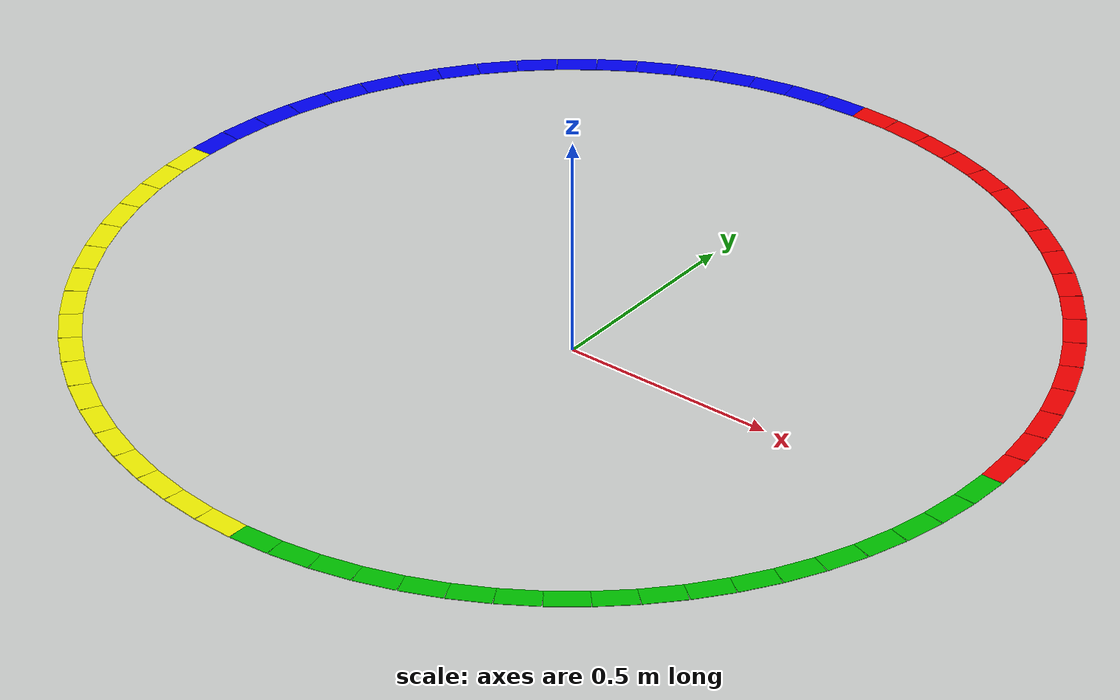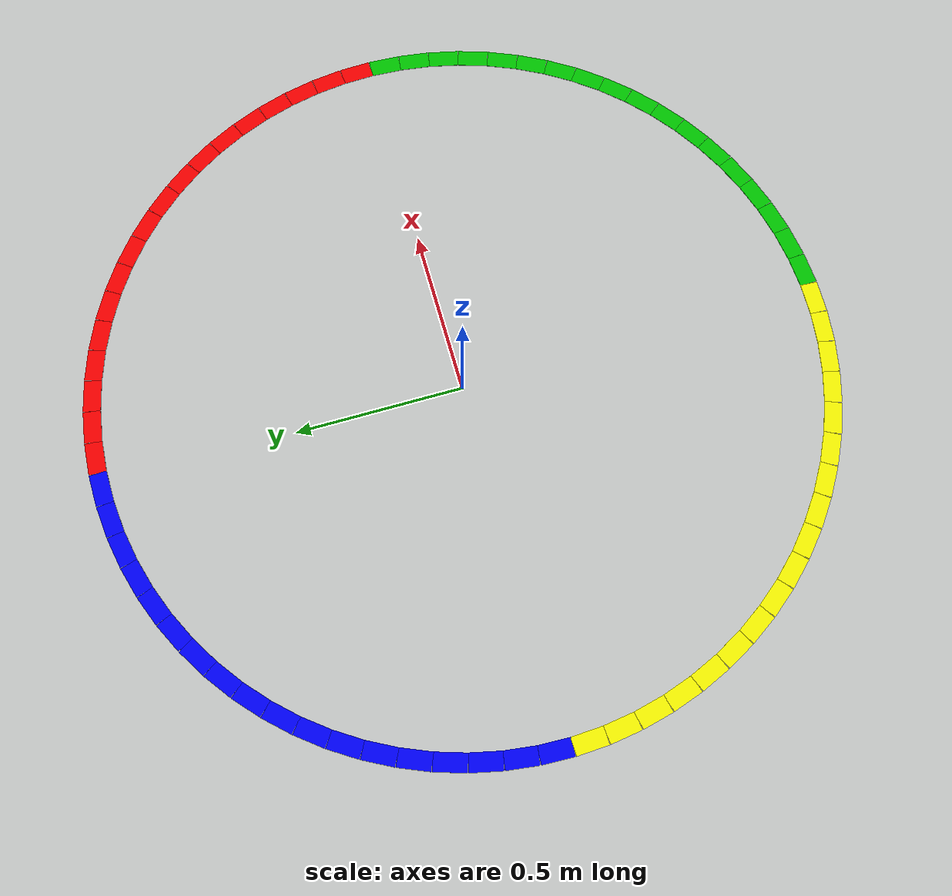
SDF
<?xml version="1.0" ?>
<sdf version="1.4">
  <model name="dlz_nav_line">
    <static>true</static>
    <link name="dlz_nav_line_link">
      <!-- Same link offset as dlz model so this can be spawned at the same world position -->
      <pose>-5.0192 0.0192 0 0 0 0</pose>
      <inertial>
        <mass>0.1</mass>
      </inertial>
      <!-- Navigation circle: radius=1.05m, 72 segments (5 deg each), 4 colored quadrants -->
      <!-- Red:    segments 000-017 (  0- 89 deg) -->
      <!-- Blue:   segments 018-035 ( 90-179 deg) -->
      <!-- Yellow: segments 036-053 (180-269 deg) -->
      <!-- Green:  segments 054-071 (270-359 deg) -->
      <visual name="nav_circle_000">
        <cast_shadows>false</cast_shadows>
        <pose>6.068201 0.026600 0.112 0 0 1.614430</pose>
        <geometry><box><size>0.091601 0.05 0.001</size></box></geometry>
        <material><ambient>1.0 0.0 0.0 1.0</ambient><diffuse>1.0 0.0 0.0 1.0</diffuse></material>
      </visual>
      <visual name="nav_circle_001">
        <cast_shadows>false</cast_shadows>
        <pose>6.060217 0.117853 0.112 0 0 1.701696</pose>
        <geometry><box><size>0.091601 0.05 0.001</size></box></geometry>
        <material><ambient>1.0 0.0 0.0 1.0</ambient><diffuse>1.0 0.0 0.0 1.0</diffuse></material>
      </visual>
      <visual name="nav_circle_002">
        <cast_shadows>false</cast_shadows>
        <pose>6.044311 0.208062 0.112 0 0 1.788962</pose>
        <geometry><box><size>0.091601 0.05 0.001</size></box></geometry>
        <material><ambient>1.0 0.0 0.0 1.0</ambient><diffuse>1.0 0.0 0.0 1.0</diffuse></material>
      </visual>
      <visual name="nav_circle_003">
        <cast_shadows>false</cast_shadows>
        <pose>6.020603 0.296541 0.112 0 0 1.876229</pose>
        <geometry><box><size>0.091601 0.05 0.001</size></box></geometry>
        <material><ambient>1.0 0.0 0.0 1.0</ambient><diffuse>1.0 0.0 0.0 1.0</diffuse></material>
      </visual>
      <visual name="nav_circle_004">
        <cast_shadows>false</cast_shadows>
        <pose>5.989274 0.382618 0.112 0 0 1.963495</pose>
        <geometry><box><size>0.091601 0.05 0.001</size></box></geometry>
        <material><ambient>1.0 0.0 0.0 1.0</ambient><diffuse>1.0 0.0 0.0 1.0</diffuse></material>
      </visual>
      <visual name="nav_circle_005">
        <cast_shadows>false</cast_shadows>
        <pose>5.950561 0.465636 0.112 0 0 2.050762</pose>
        <geometry><box><size>0.091601 0.05 0.001</size></box></geometry>
        <material><ambient>1.0 0.0 0.0 1.0</ambient><diffuse>1.0 0.0 0.0 1.0</diffuse></material>
      </visual>
      <visual name="nav_circle_006">
        <cast_shadows>false</cast_shadows>
        <pose>5.904761 0.544965 0.112 0 0 2.138028</pose>
        <geometry><box><size>0.091601 0.05 0.001</size></box></geometry>
        <material><ambient>1.0 0.0 0.0 1.0</ambient><diffuse>1.0 0.0 0.0 1.0</diffuse></material>
      </visual>
      <visual name="nav_circle_007">
        <cast_shadows>false</cast_shadows>
        <pose>5.852221 0.620000 0.112 0 0 2.225295</pose>
        <geometry><box><size>0.091601 0.05 0.001</size></box></geometry>
        <material><ambient>1.0 0.0 0.0 1.0</ambient><diffuse>1.0 0.0 0.0 1.0</diffuse></material>
      </visual>
      <visual name="nav_circle_008">
        <cast_shadows>false</cast_shadows>
        <pose>5.793341 0.690170 0.112 0 0 2.312561</pose>
        <geometry><box><size>0.091601 0.05 0.001</size></box></geometry>
        <material><ambient>1.0 0.0 0.0 1.0</ambient><diffuse>1.0 0.0 0.0 1.0</diffuse></material>
      </visual>
      <visual name="nav_circle_009">
        <cast_shadows>false</cast_shadows>
        <pose>5.728570 0.754941 0.112 0 0 2.399828</pose>
        <geometry><box><size>0.091601 0.05 0.001</size></box></geometry>
        <material><ambient>1.0 0.0 0.0 1.0</ambient><diffuse>1.0 0.0 0.0 1.0</diffuse></material>
      </visual>
      <visual name="nav_circle_010">
        <cast_shadows>false</cast_shadows>
        <pose>5.658400 0.813821 0.112 0 0 2.487094</pose>
        <geometry><box><size>0.091601 0.05 0.001</size></box></geometry>
        <material><ambient>1.0 0.0 0.0 1.0</ambient><diffuse>1.0 0.0 0.0 1.0</diffuse></material>
      </visual>
      <visual name="nav_circle_011">
        <cast_shadows>false</cast_shadows>
        <pose>5.583365 0.866361 0.112 0 0 2.574361</pose>
        <geometry><box><size>0.091601 0.05 0.001</size></box></geometry>
        <material><ambient>1.0 0.0 0.0 1.0</ambient><diffuse>1.0 0.0 0.0 1.0</diffuse></material>
      </visual>
      <visual name="nav_circle_012">
        <cast_shadows>false</cast_shadows>
        <pose>5.504036 0.912161 0.112 0 0 2.661627</pose>
        <geometry><box><size>0.091601 0.05 0.001</size></box></geometry>
        <material><ambient>1.0 0.0 0.0 1.0</ambient><diffuse>1.0 0.0 0.0 1.0</diffuse></material>
      </visual>
      <visual name="nav_circle_013">
        <cast_shadows>false</cast_shadows>
        <pose>5.421018 0.950874 0.112 0 0 2.748894</pose>
        <geometry><box><size>0.091601 0.05 0.001</size></box></geometry>
        <material><ambient>1.0 0.0 0.0 1.0</ambient><diffuse>1.0 0.0 0.0 1.0</diffuse></material>
      </visual>
      <visual name="nav_circle_014">
        <cast_shadows>false</cast_shadows>
        <pose>5.334941 0.982203 0.112 0 0 2.836160</pose>
        <geometry><box><size>0.091601 0.05 0.001</size></box></geometry>
        <material><ambient>1.0 0.0 0.0 1.0</ambient><diffuse>1.0 0.0 0.0 1.0</diffuse></material>
      </visual>
      <visual name="nav_circle_015">
        <cast_shadows>false</cast_shadows>
        <pose>5.246462 1.005911 0.112 0 0 2.923426</pose>
        <geometry><box><size>0.091601 0.05 0.001</size></box></geometry>
        <material><ambient>1.0 0.0 0.0 1.0</ambient><diffuse>1.0 0.0 0.0 1.0</diffuse></material>
      </visual>
      <visual name="nav_circle_016">
        <cast_shadows>false</cast_shadows>
        <pose>5.156253 1.021817 0.112 0 0 3.010693</pose>
        <geometry><box><size>0.091601 0.05 0.001</size></box></geometry>
        <material><ambient>1.0 0.0 0.0 1.0</ambient><diffuse>1.0 0.0 0.0 1.0</diffuse></material>
      </visual>
      <visual name="nav_circle_017">
        <cast_shadows>false</cast_shadows>
        <pose>5.065000 1.029801 0.112 0 0 3.097959</pose>
        <geometry><box><size>0.091601 0.05 0.001</size></box></geometry>
        <material><ambient>1.0 0.0 0.0 1.0</ambient><diffuse>1.0 0.0 0.0 1.0</diffuse></material>
      </visual>
      <visual name="nav_circle_018">
        <cast_shadows>false</cast_shadows>
        <pose>4.973400 1.029801 0.112 0 0 3.185226</pose>
        <geometry><box><size>0.091601 0.05 0.001</size></box></geometry>
        <material><ambient>0.0 0.0 1.0 1.0</ambient><diffuse>0.0 0.0 1.0 1.0</diffuse></material>
      </visual>
      <visual name="nav_circle_019">
        <cast_shadows>false</cast_shadows>
        <pose>4.882147 1.021817 0.112 0 0 3.272492</pose>
        <geometry><box><size>0.091601 0.05 0.001</size></box></geometry>
        <material><ambient>0.0 0.0 1.0 1.0</ambient><diffuse>0.0 0.0 1.0 1.0</diffuse></material>
      </visual>
      <visual name="nav_circle_020">
        <cast_shadows>false</cast_shadows>
        <pose>4.791938 1.005911 0.112 0 0 3.359759</pose>
        <geometry><box><size>0.091601 0.05 0.001</size></box></geometry>
        <material><ambient>0.0 0.0 1.0 1.0</ambient><diffuse>0.0 0.0 1.0 1.0</diffuse></material>
      </visual>
      <visual name="nav_circle_021">
        <cast_shadows>false</cast_shadows>
        <pose>4.703459 0.982203 0.112 0 0 3.447025</pose>
        <geometry><box><size>0.091601 0.05 0.001</size></box></geometry>
        <material><ambient>0.0 0.0 1.0 1.0</ambient><diffuse>0.0 0.0 1.0 1.0</diffuse></material>
      </visual>
      <visual name="nav_circle_022">
        <cast_shadows>false</cast_shadows>
        <pose>4.617382 0.950874 0.112 0 0 3.534292</pose>
        <geometry><box><size>0.091601 0.05 0.001</size></box></geometry>
        <material><ambient>0.0 0.0 1.0 1.0</ambient><diffuse>0.0 0.0 1.0 1.0</diffuse></material>
      </visual>
      <visual name="nav_circle_023">
        <cast_shadows>false</cast_shadows>
        <pose>4.534364 0.912161 0.112 0 0 3.621558</pose>
        <geometry><box><size>0.091601 0.05 0.001</size></box></geometry>
        <material><ambient>0.0 0.0 1.0 1.0</ambient><diffuse>0.0 0.0 1.0 1.0</diffuse></material>
      </visual>
      <visual name="nav_circle_024">
        <cast_shadows>false</cast_shadows>
        <pose>4.455035 0.866361 0.112 0 0 3.708825</pose>
        <geometry><box><size>0.091601 0.05 0.001</size></box></geometry>
        <material><ambient>0.0 0.0 1.0 1.0</ambient><diffuse>0.0 0.0 1.0 1.0</diffuse></material>
      </visual>
      <visual name="nav_circle_025">
        <cast_shadows>false</cast_shadows>
        <pose>4.380000 0.813821 0.112 0 0 3.796091</pose>
        <geometry><box><size>0.091601 0.05 0.001</size></box></geometry>
        <material><ambient>0.0 0.0 1.0 1.0</ambient><diffuse>0.0 0.0 1.0 1.0</diffuse></material>
      </visual>
      <visual name="nav_circle_026">
        <cast_shadows>false</cast_shadows>
        <pose>4.309830 0.754941 0.112 0 0 3.883358</pose>
        <geometry><box><size>0.091601 0.05 0.001</size></box></geometry>
        <material><ambient>0.0 0.0 1.0 1.0</ambient><diffuse>0.0 0.0 1.0 1.0</diffuse></material>
      </visual>
      <visual name="nav_circle_027">
        <cast_shadows>false</cast_shadows>
        <pose>4.245059 0.690170 0.112 0 0 3.970624</pose>
        <geometry><box><size>0.091601 0.05 0.001</size></box></geometry>
        <material><ambient>0.0 0.0 1.0 1.0</ambient><diffuse>0.0 0.0 1.0 1.0</diffuse></material>
      </visual>
      <visual name="nav_circle_028">
        <cast_shadows>false</cast_shadows>
        <pose>4.186179 0.620000 0.112 0 0 4.057891</pose>
        <geometry><box><size>0.091601 0.05 0.001</size></box></geometry>
        <material><ambient>0.0 0.0 1.0 1.0</ambient><diffuse>0.0 0.0 1.0 1.0</diffuse></material>
      </visual>
      <visual name="nav_circle_029">
        <cast_shadows>false</cast_shadows>
        <pose>4.133639 0.544965 0.112 0 0 4.145157</pose>
        <geometry><box><size>0.091601 0.05 0.001</size></box></geometry>
        <material><ambient>0.0 0.0 1.0 1.0</ambient><diffuse>0.0 0.0 1.0 1.0</diffuse></material>
      </visual>
      <visual name="nav_circle_030">
        <cast_shadows>false</cast_shadows>
        <pose>4.087839 0.465636 0.112 0 0 4.232423</pose>
        <geometry><box><size>0.091601 0.05 0.001</size></box></geometry>
        <material><ambient>0.0 0.0 1.0 1.0</ambient><diffuse>0.0 0.0 1.0 1.0</diffuse></material>
      </visual>
      <visual name="nav_circle_031">
        <cast_shadows>false</cast_shadows>
        <pose>4.049126 0.382618 0.112 0 0 4.319690</pose>
        <geometry><box><size>0.091601 0.05 0.001</size></box></geometry>
        <material><ambient>0.0 0.0 1.0 1.0</ambient><diffuse>0.0 0.0 1.0 1.0</diffuse></material>
      </visual>
      <visual name="nav_circle_032">
        <cast_shadows>false</cast_shadows>
        <pose>4.017797 0.296541 0.112 0 0 4.406956</pose>
        <geometry><box><size>0.091601 0.05 0.001</size></box></geometry>
        <material><ambient>0.0 0.0 1.0 1.0</ambient><diffuse>0.0 0.0 1.0 1.0</diffuse></material>
      </visual>
      <visual name="nav_circle_033">
        <cast_shadows>false</cast_shadows>
        <pose>3.994089 0.208062 0.112 0 0 4.494223</pose>
        <geometry><box><size>0.091601 0.05 0.001</size></box></geometry>
        <material><ambient>0.0 0.0 1.0 1.0</ambient><diffuse>0.0 0.0 1.0 1.0</diffuse></material>
      </visual>
      <visual name="nav_circle_034">
        <cast_shadows>false</cast_shadows>
        <pose>3.978183 0.117853 0.112 0 0 4.581489</pose>
        <geometry><box><size>0.091601 0.05 0.001</size></box></geometry>
        <material><ambient>0.0 0.0 1.0 1.0</ambient><diffuse>0.0 0.0 1.0 1.0</diffuse></material>
      </visual>
      <visual name="nav_circle_035">
        <cast_shadows>false</cast_shadows>
        <pose>3.970199 0.026600 0.112 0 0 4.668756</pose>
        <geometry><box><size>0.091601 0.05 0.001</size></box></geometry>
        <material><ambient>0.0 0.0 1.0 1.0</ambient><diffuse>0.0 0.0 1.0 1.0</diffuse></material>
      </visual>
      <visual name="nav_circle_036">
        <cast_shadows>false</cast_shadows>
        <pose>3.970199 -0.065000 0.112 0 0 4.756022</pose>
        <geometry><box><size>0.091601 0.05 0.001</size></box></geometry>
        <material><ambient>1.0 1.0 0.0 1.0</ambient><diffuse>1.0 1.0 0.0 1.0</diffuse></material>
      </visual>
      <visual name="nav_circle_037">
        <cast_shadows>false</cast_shadows>
        <pose>3.978183 -0.156253 0.112 0 0 4.843289</pose>
        <geometry><box><size>0.091601 0.05 0.001</size></box></geometry>
        <material><ambient>1.0 1.0 0.0 1.0</ambient><diffuse>1.0 1.0 0.0 1.0</diffuse></material>
      </visual>
      <visual name="nav_circle_038">
        <cast_shadows>false</cast_shadows>
        <pose>3.994089 -0.246462 0.112 0 0 4.930555</pose>
        <geometry><box><size>0.091601 0.05 0.001</size></box></geometry>
        <material><ambient>1.0 1.0 0.0 1.0</ambient><diffuse>1.0 1.0 0.0 1.0</diffuse></material>
      </visual>
      <visual name="nav_circle_039">
        <cast_shadows>false</cast_shadows>
        <pose>4.017797 -0.334941 0.112 0 0 5.017822</pose>
        <geometry><box><size>0.091601 0.05 0.001</size></box></geometry>
        <material><ambient>1.0 1.0 0.0 1.0</ambient><diffuse>1.0 1.0 0.0 1.0</diffuse></material>
      </visual>
      <visual name="nav_circle_040">
        <cast_shadows>false</cast_shadows>
        <pose>4.049126 -0.421018 0.112 0 0 5.105088</pose>
        <geometry><box><size>0.091601 0.05 0.001</size></box></geometry>
        <material><ambient>1.0 1.0 0.0 1.0</ambient><diffuse>1.0 1.0 0.0 1.0</diffuse></material>
      </visual>
      <visual name="nav_circle_041">
        <cast_shadows>false</cast_shadows>
        <pose>4.087839 -0.504036 0.112 0 0 5.192355</pose>
        <geometry><box><size>0.091601 0.05 0.001</size></box></geometry>
        <material><ambient>1.0 1.0 0.0 1.0</ambient><diffuse>1.0 1.0 0.0 1.0</diffuse></material>
      </visual>
      <visual name="nav_circle_042">
        <cast_shadows>false</cast_shadows>
        <pose>4.133639 -0.583365 0.112 0 0 5.279621</pose>
        <geometry><box><size>0.091601 0.05 0.001</size></box></geometry>
        <material><ambient>1.0 1.0 0.0 1.0</ambient><diffuse>1.0 1.0 0.0 1.0</diffuse></material>
      </visual>
      <visual name="nav_circle_043">
        <cast_shadows>false</cast_shadows>
        <pose>4.186179 -0.658400 0.112 0 0 5.366887</pose>
        <geometry><box><size>0.091601 0.05 0.001</size></box></geometry>
        <material><ambient>1.0 1.0 0.0 1.0</ambient><diffuse>1.0 1.0 0.0 1.0</diffuse></material>
      </visual>
      <visual name="nav_circle_044">
        <cast_shadows>false</cast_shadows>
        <pose>4.245059 -0.728570 0.112 0 0 5.454154</pose>
        <geometry><box><size>0.091601 0.05 0.001</size></box></geometry>
        <material><ambient>1.0 1.0 0.0 1.0</ambient><diffuse>1.0 1.0 0.0 1.0</diffuse></material>
      </visual>
      <visual name="nav_circle_045">
        <cast_shadows>false</cast_shadows>
        <pose>4.309830 -0.793341 0.112 0 0 5.541420</pose>
        <geometry><box><size>0.091601 0.05 0.001</size></box></geometry>
        <material><ambient>1.0 1.0 0.0 1.0</ambient><diffuse>1.0 1.0 0.0 1.0</diffuse></material>
      </visual>
      <visual name="nav_circle_046">
        <cast_shadows>false</cast_shadows>
        <pose>4.380000 -0.852221 0.112 0 0 5.628687</pose>
        <geometry><box><size>0.091601 0.05 0.001</size></box></geometry>
        <material><ambient>1.0 1.0 0.0 1.0</ambient><diffuse>1.0 1.0 0.0 1.0</diffuse></material>
      </visual>
      <visual name="nav_circle_047">
        <cast_shadows>false</cast_shadows>
        <pose>4.455035 -0.904761 0.112 0 0 5.715953</pose>
        <geometry><box><size>0.091601 0.05 0.001</size></box></geometry>
        <material><ambient>1.0 1.0 0.0 1.0</ambient><diffuse>1.0 1.0 0.0 1.0</diffuse></material>
      </visual>
      <visual name="nav_circle_048">
        <cast_shadows>false</cast_shadows>
        <pose>4.534364 -0.950561 0.112 0 0 5.803220</pose>
        <geometry><box><size>0.091601 0.05 0.001</size></box></geometry>
        <material><ambient>1.0 1.0 0.0 1.0</ambient><diffuse>1.0 1.0 0.0 1.0</diffuse></material>
      </visual>
      <visual name="nav_circle_049">
        <cast_shadows>false</cast_shadows>
        <pose>4.617382 -0.989274 0.112 0 0 5.890486</pose>
        <geometry><box><size>0.091601 0.05 0.001</size></box></geometry>
        <material><ambient>1.0 1.0 0.0 1.0</ambient><diffuse>1.0 1.0 0.0 1.0</diffuse></material>
      </visual>
      <visual name="nav_circle_050">
        <cast_shadows>false</cast_shadows>
        <pose>4.703459 -1.020603 0.112 0 0 5.977753</pose>
        <geometry><box><size>0.091601 0.05 0.001</size></box></geometry>
        <material><ambient>1.0 1.0 0.0 1.0</ambient><diffuse>1.0 1.0 0.0 1.0</diffuse></material>
      </visual>
      <visual name="nav_circle_051">
        <cast_shadows>false</cast_shadows>
        <pose>4.791938 -1.044311 0.112 0 0 6.065019</pose>
        <geometry><box><size>0.091601 0.05 0.001</size></box></geometry>
        <material><ambient>1.0 1.0 0.0 1.0</ambient><diffuse>1.0 1.0 0.0 1.0</diffuse></material>
      </visual>
      <visual name="nav_circle_052">
        <cast_shadows>false</cast_shadows>
        <pose>4.882147 -1.060217 0.112 0 0 6.152286</pose>
        <geometry><box><size>0.091601 0.05 0.001</size></box></geometry>
        <material><ambient>1.0 1.0 0.0 1.0</ambient><diffuse>1.0 1.0 0.0 1.0</diffuse></material>
      </visual>
      <visual name="nav_circle_053">
        <cast_shadows>false</cast_shadows>
        <pose>4.973400 -1.068201 0.112 0 0 6.239552</pose>
        <geometry><box><size>0.091601 0.05 0.001</size></box></geometry>
        <material><ambient>1.0 1.0 0.0 1.0</ambient><diffuse>1.0 1.0 0.0 1.0</diffuse></material>
      </visual>
      <visual name="nav_circle_054">
        <cast_shadows>false</cast_shadows>
        <pose>5.065000 -1.068201 0.112 0 0 6.326819</pose>
        <geometry><box><size>0.091601 0.05 0.001</size></box></geometry>
        <material><ambient>0.0 0.8 0.0 1.0</ambient><diffuse>0.0 0.8 0.0 1.0</diffuse></material>
      </visual>
      <visual name="nav_circle_055">
        <cast_shadows>false</cast_shadows>
        <pose>5.156253 -1.060217 0.112 0 0 6.414085</pose>
        <geometry><box><size>0.091601 0.05 0.001</size></box></geometry>
        <material><ambient>0.0 0.8 0.0 1.0</ambient><diffuse>0.0 0.8 0.0 1.0</diffuse></material>
      </visual>
      <visual name="nav_circle_056">
        <cast_shadows>false</cast_shadows>
        <pose>5.246462 -1.044311 0.112 0 0 6.501351</pose>
        <geometry><box><size>0.091601 0.05 0.001</size></box></geometry>
        <material><ambient>0.0 0.8 0.0 1.0</ambient><diffuse>0.0 0.8 0.0 1.0</diffuse></material>
      </visual>
      <visual name="nav_circle_057">
        <cast_shadows>false</cast_shadows>
        <pose>5.334941 -1.020603 0.112 0 0 6.588618</pose>
        <geometry><box><size>0.091601 0.05 0.001</size></box></geometry>
        <material><ambient>0.0 0.8 0.0 1.0</ambient><diffuse>0.0 0.8 0.0 1.0</diffuse></material>
      </visual>
      <visual name="nav_circle_058">
        <cast_shadows>false</cast_shadows>
        <pose>5.421018 -0.989274 0.112 0 0 6.675884</pose>
        <geometry><box><size>0.091601 0.05 0.001</size></box></geometry>
        <material><ambient>0.0 0.8 0.0 1.0</ambient><diffuse>0.0 0.8 0.0 1.0</diffuse></material>
      </visual>
      <visual name="nav_circle_059">
        <cast_shadows>false</cast_shadows>
        <pose>5.504036 -0.950561 0.112 0 0 6.763151</pose>
        <geometry><box><size>0.091601 0.05 0.001</size></box></geometry>
        <material><ambient>0.0 0.8 0.0 1.0</ambient><diffuse>0.0 0.8 0.0 1.0</diffuse></material>
      </visual>
      <visual name="nav_circle_060">
        <cast_shadows>false</cast_shadows>
        <pose>5.583365 -0.904761 0.112 0 0 6.850417</pose>
        <geometry><box><size>0.091601 0.05 0.001</size></box></geometry>
        <material><ambient>0.0 0.8 0.0 1.0</ambient><diffuse>0.0 0.8 0.0 1.0</diffuse></material>
      </visual>
      <visual name="nav_circle_061">
        <cast_shadows>false</cast_shadows>
        <pose>5.658400 -0.852221 0.112 0 0 6.937684</pose>
        <geometry><box><size>0.091601 0.05 0.001</size></box></geometry>
        <material><ambient>0.0 0.8 0.0 1.0</ambient><diffuse>0.0 0.8 0.0 1.0</diffuse></material>
      </visual>
      <visual name="nav_circle_062">
        <cast_shadows>false</cast_shadows>
        <pose>5.728570 -0.793341 0.112 0 0 7.024950</pose>
        <geometry><box><size>0.091601 0.05 0.001</size></box></geometry>
        <material><ambient>0.0 0.8 0.0 1.0</ambient><diffuse>0.0 0.8 0.0 1.0</diffuse></material>
      </visual>
      <visual name="nav_circle_063">
        <cast_shadows>false</cast_shadows>
        <pose>5.793341 -0.728570 0.112 0 0 7.112217</pose>
        <geometry><box><size>0.091601 0.05 0.001</size></box></geometry>
        <material><ambient>0.0 0.8 0.0 1.0</ambient><diffuse>0.0 0.8 0.0 1.0</diffuse></material>
      </visual>
      <visual name="nav_circle_064">
        <cast_shadows>false</cast_shadows>
        <pose>5.852221 -0.658400 0.112 0 0 7.199483</pose>
        <geometry><box><size>0.091601 0.05 0.001</size></box></geometry>
        <material><ambient>0.0 0.8 0.0 1.0</ambient><diffuse>0.0 0.8 0.0 1.0</diffuse></material>
      </visual>
      <visual name="nav_circle_065">
        <cast_shadows>false</cast_shadows>
        <pose>5.904761 -0.583365 0.112 0 0 7.286750</pose>
        <geometry><box><size>0.091601 0.05 0.001</size></box></geometry>
        <material><ambient>0.0 0.8 0.0 1.0</ambient><diffuse>0.0 0.8 0.0 1.0</diffuse></material>
      </visual>
      <visual name="nav_circle_066">
        <cast_shadows>false</cast_shadows>
        <pose>5.950561 -0.504036 0.112 0 0 7.374016</pose>
        <geometry><box><size>0.091601 0.05 0.001</size></box></geometry>
        <material><ambient>0.0 0.8 0.0 1.0</ambient><diffuse>0.0 0.8 0.0 1.0</diffuse></material>
      </visual>
      <visual name="nav_circle_067">
        <cast_shadows>false</cast_shadows>
        <pose>5.989274 -0.421018 0.112 0 0 7.461283</pose>
        <geometry><box><size>0.091601 0.05 0.001</size></box></geometry>
        <material><ambient>0.0 0.8 0.0 1.0</ambient><diffuse>0.0 0.8 0.0 1.0</diffuse></material>
      </visual>
      <visual name="nav_circle_068">
        <cast_shadows>false</cast_shadows>
        <pose>6.020603 -0.334941 0.112 0 0 7.548549</pose>
        <geometry><box><size>0.091601 0.05 0.001</size></box></geometry>
        <material><ambient>0.0 0.8 0.0 1.0</ambient><diffuse>0.0 0.8 0.0 1.0</diffuse></material>
      </visual>
      <visual name="nav_circle_069">
        <cast_shadows>false</cast_shadows>
        <pose>6.044311 -0.246462 0.112 0 0 7.635815</pose>
        <geometry><box><size>0.091601 0.05 0.001</size></box></geometry>
        <material><ambient>0.0 0.8 0.0 1.0</ambient><diffuse>0.0 0.8 0.0 1.0</diffuse></material>
      </visual>
      <visual name="nav_circle_070">
        <cast_shadows>false</cast_shadows>
        <pose>6.060217 -0.156253 0.112 0 0 7.723082</pose>
        <geometry><box><size>0.091601 0.05 0.001</size></box></geometry>
        <material><ambient>0.0 0.8 0.0 1.0</ambient><diffuse>0.0 0.8 0.0 1.0</diffuse></material>
      </visual>
      <visual name="nav_circle_071">
        <cast_shadows>false</cast_shadows>
        <pose>6.068201 -0.065000 0.112 0 0 7.810348</pose>
        <geometry><box><size>0.091601 0.05 0.001</size></box></geometry>
        <material><ambient>0.0 0.8 0.0 1.0</ambient><diffuse>0.0 0.8 0.0 1.0</diffuse></material>
      </visual>
    </link>
  </model>
</sdf>
